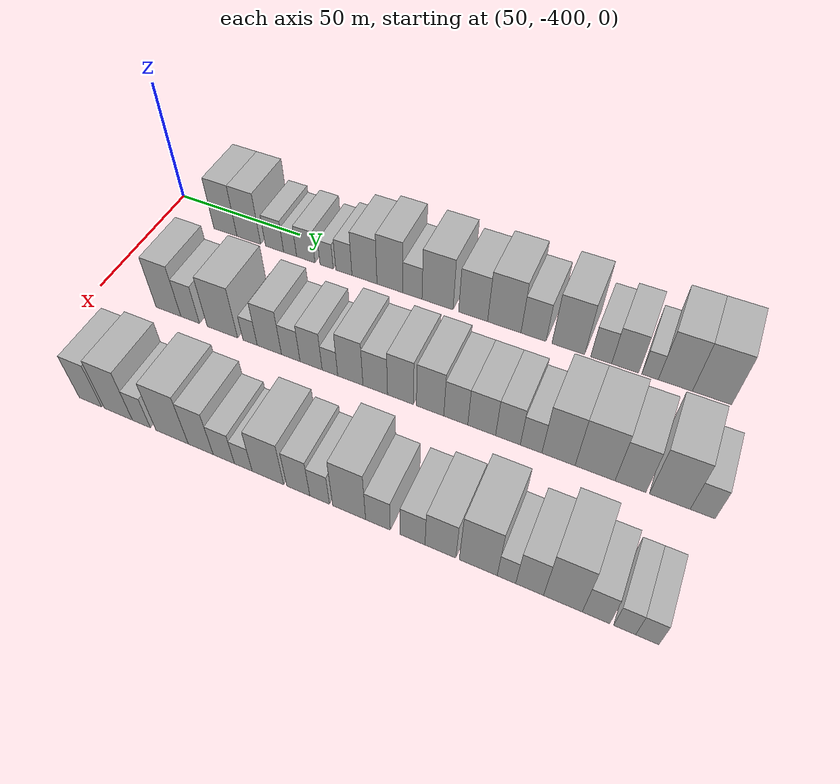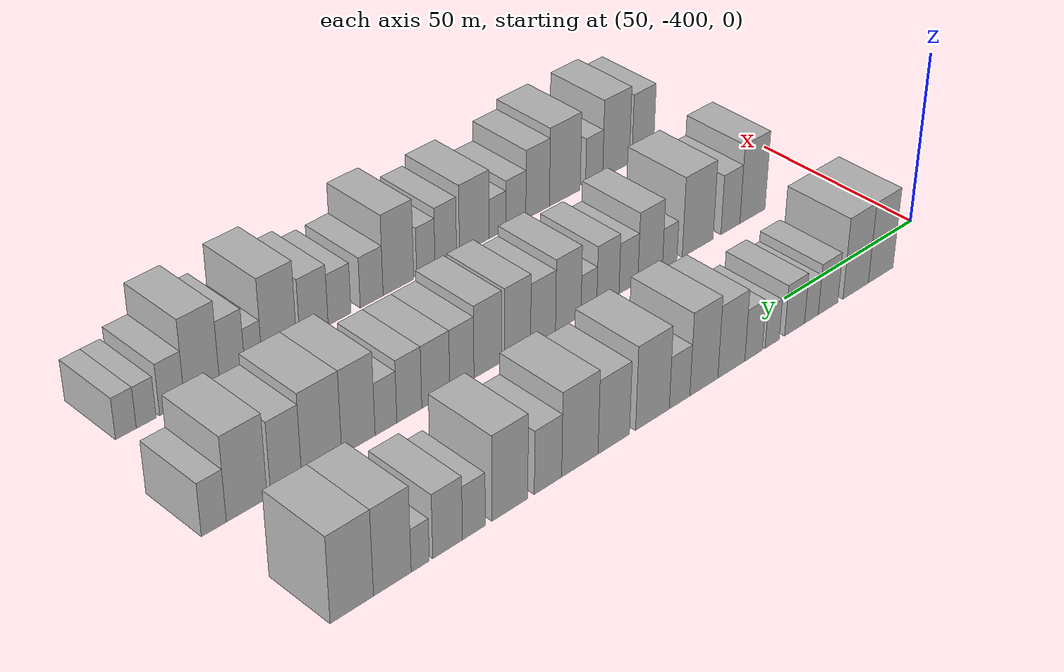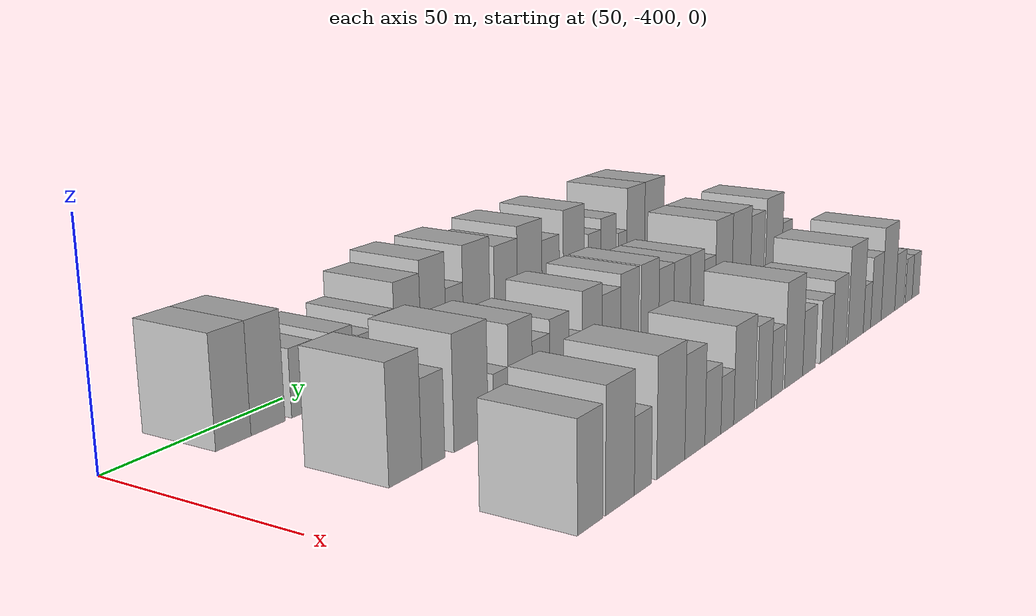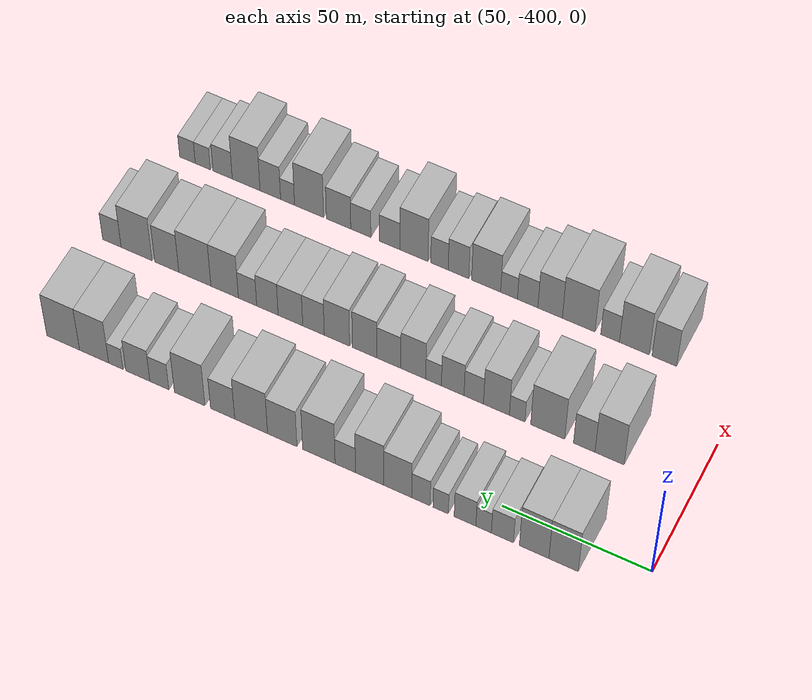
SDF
<sdf version="1.6">
 <world name="default">
  <model name="building_1">
   <static>1</static>
   <pose>50.0000 -375.1057 0 0.000000 0.000000 0.000000</pose>
   <link name="link">
    <pose>0 0 12.00 0 0 0</pose>
    <collision name="collision"><geometry><box><size>20.0000 9.7886 24.0000</size></box></geometry></collision>
    <visual name="visual">
     <cast_shadows>0</cast_shadows>
     <geometry><box><size>20.0000 9.7886 24.0000</size></box></geometry>
     <material>
      <script>
       <uri>model://HANNAS_wall/materials/scripts</uri>
       <uri>model://HANNAS_wall/materials/textures</uri>
       <name>vrc/HANNAS_wall</name>
      </script>
     </material>
    </visual>
   </link>
  </model>
  <model name="building_2">
   <static>1</static>
   <pose>50.0000 -365.2573 0 0.000000 0.000000 0.000000</pose>
   <link name="link">
    <pose>0 0 12.00 0 0 0</pose>
    <collision name="collision"><geometry><box><size>20.0000 9.9081 24.0000</size></box></geometry></collision>
    <visual name="visual">
     <cast_shadows>0</cast_shadows>
     <geometry><box><size>20.0000 9.9081 24.0000</size></box></geometry>
     <material>
      <script>
       <uri>model://HANNAS_wall/materials/scripts</uri>
       <uri>model://HANNAS_wall/materials/textures</uri>
       <name>vrc/HANNAS_wall</name>
      </script>
     </material>
    </visual>
   </link>
  </model>
  <model name="building_3">
   <static>1</static>
   <pose>50.0000 -354.5814 0 0.000000 0.000000 0.000000</pose>
   <link name="link">
    <pose>0 0 7.50 0 0 0</pose>
    <collision name="collision"><geometry><box><size>20.0000 7.4438 15.0000</size></box></geometry></collision>
    <visual name="visual">
     <cast_shadows>0</cast_shadows>
     <geometry><box><size>20.0000 7.4438 15.0000</size></box></geometry>
     <material>
      <script>
       <uri>model://HANNAS_wall/materials/scripts</uri>
       <uri>model://HANNAS_wall/materials/textures</uri>
       <name>vrc/HANNAS_wall</name>
      </script>
     </material>
    </visual>
   </link>
  </model>
  <model name="building_4">
   <static>1</static>
   <pose>50.0000 -348.2421 0 0.000000 0.000000 0.000000</pose>
   <link name="link">
    <pose>0 0 6.00 0 0 0</pose>
    <collision name="collision"><geometry><box><size>20.0000 5.2347 12.0000</size></box></geometry></collision>
    <visual name="visual">
     <cast_shadows>0</cast_shadows>
     <geometry><box><size>20.0000 5.2347 12.0000</size></box></geometry>
     <material>
      <script>
       <uri>model://HANNAS_wall/materials/scripts</uri>
       <uri>model://HANNAS_wall/materials/textures</uri>
       <name>vrc/HANNAS_wall</name>
      </script>
     </material>
    </visual>
   </link>
  </model>
  <model name="building_5">
   <static>1</static>
   <pose>50.0000 -341.9322 0 0.000000 0.000000 0.000000</pose>
   <link name="link">
    <pose>0 0 7.50 0 0 0</pose>
    <collision name="collision"><geometry><box><size>20.0000 7.3851 15.0000</size></box></geometry></collision>
    <visual name="visual">
     <cast_shadows>0</cast_shadows>
     <geometry><box><size>20.0000 7.3851 15.0000</size></box></geometry>
     <material>
      <script>
       <uri>model://HANNAS_wall/materials/scripts</uri>
       <uri>model://HANNAS_wall/materials/textures</uri>
       <name>vrc/HANNAS_wall</name>
      </script>
     </material>
    </visual>
   </link>
  </model>
  <model name="building_6">
   <static>1</static>
   <pose>50.0000 -333.6332 0 0.000000 0.000000 0.000000</pose>
   <link name="link">
    <pose>0 0 6.00 0 0 0</pose>
    <collision name="collision"><geometry><box><size>20.0000 5.2130 12.0000</size></box></geometry></collision>
    <visual name="visual">
     <cast_shadows>0</cast_shadows>
     <geometry><box><size>20.0000 5.2130 12.0000</size></box></geometry>
     <material>
      <script>
       <uri>model://HANNAS_wall/materials/scripts</uri>
       <uri>model://HANNAS_wall/materials/textures</uri>
       <name>vrc/HANNAS_wall</name>
      </script>
     </material>
    </visual>
   </link>
  </model>
  <model name="building_7">
   <static>1</static>
   <pose>50.0000 -326.8736 0 0.000000 0.000000 0.000000</pose>
   <link name="link">
    <pose>0 0 7.50 0 0 0</pose>
    <collision name="collision"><geometry><box><size>20.0000 6.3061 15.0000</size></box></geometry></collision>
    <visual name="visual">
     <cast_shadows>0</cast_shadows>
     <geometry><box><size>20.0000 6.3061 15.0000</size></box></geometry>
     <material>
      <script>
       <uri>model://HANNAS_wall/materials/scripts</uri>
       <uri>model://HANNAS_wall/materials/textures</uri>
       <name>vrc/HANNAS_wall</name>
      </script>
     </material>
    </visual>
   </link>
  </model>
  <model name="building_8">
   <static>1</static>
   <pose>50.0000 -318.9188 0 0.000000 0.000000 0.000000</pose>
   <link name="link">
    <pose>0 0 10.50 0 0 0</pose>
    <collision name="collision"><geometry><box><size>20.0000 9.6036 21.0000</size></box></geometry></collision>
    <visual name="visual">
     <cast_shadows>0</cast_shadows>
     <geometry><box><size>20.0000 9.6036 21.0000</size></box></geometry>
     <material>
      <script>
       <uri>model://HANNAS_wall/materials/scripts</uri>
       <uri>model://HANNAS_wall/materials/textures</uri>
       <name>vrc/HANNAS_wall</name>
      </script>
     </material>
    </visual>
   </link>
  </model>
  <model name="building_9">
   <static>1</static>
   <pose>50.0000 -309.2327 0 0.000000 0.000000 0.000000</pose>
   <link name="link">
    <pose>0 0 12.00 0 0 0</pose>
    <collision name="collision"><geometry><box><size>20.0000 9.7687 24.0000</size></box></geometry></collision>
    <visual name="visual">
     <cast_shadows>0</cast_shadows>
     <geometry><box><size>20.0000 9.7687 24.0000</size></box></geometry>
     <material>
      <script>
       <uri>model://HANNAS_wall/materials/scripts</uri>
       <uri>model://HANNAS_wall/materials/textures</uri>
       <name>vrc/HANNAS_wall</name>
      </script>
     </material>
    </visual>
   </link>
  </model>
  <model name="building_10">
   <static>1</static>
   <pose>50.0000 -300.8077 0 0.000000 0.000000 0.000000</pose>
   <link name="link">
    <pose>0 0 7.50 0 0 0</pose>
    <collision name="collision"><geometry><box><size>20.0000 7.0812 15.0000</size></box></geometry></collision>
    <visual name="visual">
     <cast_shadows>0</cast_shadows>
     <geometry><box><size>20.0000 7.0812 15.0000</size></box></geometry>
     <material>
      <script>
       <uri>model://HANNAS_wall/materials/scripts</uri>
       <uri>model://HANNAS_wall/materials/textures</uri>
       <name>vrc/HANNAS_wall</name>
      </script>
     </material>
    </visual>
   </link>
  </model>
  <model name="building_11">
   <static>1</static>
   <pose>50.0000 -291.6061 0 0.000000 0.000000 0.000000</pose>
   <link name="link">
    <pose>0 0 12.00 0 0 0</pose>
    <collision name="collision"><geometry><box><size>20.0000 11.3220 24.0000</size></box></geometry></collision>
    <visual name="visual">
     <cast_shadows>0</cast_shadows>
     <geometry><box><size>20.0000 11.3220 24.0000</size></box></geometry>
     <material>
      <script>
       <uri>model://HANNAS_wall/materials/scripts</uri>
       <uri>model://HANNAS_wall/materials/textures</uri>
       <name>vrc/HANNAS_wall</name>
      </script>
     </material>
    </visual>
   </link>
  </model>
  <model name="building_12">
   <static>1</static>
   <pose>50.0000 -278.7945 0 0.000000 0.000000 0.000000</pose>
   <link name="link">
    <pose>0 0 10.50 0 0 0</pose>
    <collision name="collision"><geometry><box><size>20.0000 10.3011 21.0000</size></box></geometry></collision>
    <visual name="visual">
     <cast_shadows>0</cast_shadows>
     <geometry><box><size>20.0000 10.3011 21.0000</size></box></geometry>
     <material>
      <script>
       <uri>model://HANNAS_wall/materials/scripts</uri>
       <uri>model://HANNAS_wall/materials/textures</uri>
       <name>vrc/HANNAS_wall</name>
      </script>
     </material>
    </visual>
   </link>
  </model>
  <model name="building_13">
   <static>1</static>
   <pose>50.0000 -267.8266 0 0.000000 0.000000 0.000000</pose>
   <link name="link">
    <pose>0 0 12.00 0 0 0</pose>
    <collision name="collision"><geometry><box><size>20.0000 11.6347 24.0000</size></box></geometry></collision>
    <visual name="visual">
     <cast_shadows>0</cast_shadows>
     <geometry><box><size>20.0000 11.6347 24.0000</size></box></geometry>
     <material>
      <script>
       <uri>model://HANNAS_wall/materials/scripts</uri>
       <uri>model://HANNAS_wall/materials/textures</uri>
       <name>vrc/HANNAS_wall</name>
      </script>
     </material>
    </visual>
   </link>
  </model>
  <model name="building_14">
   <static>1</static>
   <pose>50.0000 -257.7318 0 0.000000 0.000000 0.000000</pose>
   <link name="link">
    <pose>0 0 9.00 0 0 0</pose>
    <collision name="collision"><geometry><box><size>20.0000 8.5549 18.0000</size></box></geometry></collision>
    <visual name="visual">
     <cast_shadows>0</cast_shadows>
     <geometry><box><size>20.0000 8.5549 18.0000</size></box></geometry>
     <material>
      <script>
       <uri>model://HANNAS_wall/materials/scripts</uri>
       <uri>model://HANNAS_wall/materials/textures</uri>
       <name>vrc/HANNAS_wall</name>
      </script>
     </material>
    </visual>
   </link>
  </model>
  <model name="building_15">
   <static>1</static>
   <pose>50.0000 -245.9967 0 0.000000 0.000000 0.000000</pose>
   <link name="link">
    <pose>0 0 12.00 0 0 0</pose>
    <collision name="collision"><geometry><box><size>20.0000 10.9153 24.0000</size></box></geometry></collision>
    <visual name="visual">
     <cast_shadows>0</cast_shadows>
     <geometry><box><size>20.0000 10.9153 24.0000</size></box></geometry>
     <material>
      <script>
       <uri>model://HANNAS_wall/materials/scripts</uri>
       <uri>model://HANNAS_wall/materials/textures</uri>
       <name>vrc/HANNAS_wall</name>
      </script>
     </material>
    </visual>
   </link>
  </model>
  <model name="building_16">
   <static>1</static>
   <pose>50.0000 -235.1256 0 0.000000 0.000000 0.000000</pose>
   <link name="link">
    <pose>0 0 7.50 0 0 0</pose>
    <collision name="collision"><geometry><box><size>20.0000 6.8268 15.0000</size></box></geometry></collision>
    <visual name="visual">
     <cast_shadows>0</cast_shadows>
     <geometry><box><size>20.0000 6.8268 15.0000</size></box></geometry>
     <material>
      <script>
       <uri>model://HANNAS_wall/materials/scripts</uri>
       <uri>model://HANNAS_wall/materials/textures</uri>
       <name>vrc/HANNAS_wall</name>
      </script>
     </material>
    </visual>
   </link>
  </model>
  <model name="building_17">
   <static>1</static>
   <pose>50.0000 -227.3693 0 0.000000 0.000000 0.000000</pose>
   <link name="link">
    <pose>0 0 9.00 0 0 0</pose>
    <collision name="collision"><geometry><box><size>20.0000 8.6857 18.0000</size></box></geometry></collision>
    <visual name="visual">
     <cast_shadows>0</cast_shadows>
     <geometry><box><size>20.0000 8.6857 18.0000</size></box></geometry>
     <material>
      <script>
       <uri>model://HANNAS_wall/materials/scripts</uri>
       <uri>model://HANNAS_wall/materials/textures</uri>
       <name>vrc/HANNAS_wall</name>
      </script>
     </material>
    </visual>
   </link>
  </model>
  <model name="building_18">
   <static>1</static>
   <pose>50.0000 -219.4277 0 0.000000 0.000000 0.000000</pose>
   <link name="link">
    <pose>0 0 6.00 0 0 0</pose>
    <collision name="collision"><geometry><box><size>20.0000 5.1975 12.0000</size></box></geometry></collision>
    <visual name="visual">
     <cast_shadows>0</cast_shadows>
     <geometry><box><size>20.0000 5.1975 12.0000</size></box></geometry>
     <material>
      <script>
       <uri>model://HANNAS_wall/materials/scripts</uri>
       <uri>model://HANNAS_wall/materials/textures</uri>
       <name>vrc/HANNAS_wall</name>
      </script>
     </material>
    </visual>
   </link>
  </model>
  <model name="building_19">
   <static>1</static>
   <pose>50.0000 -211.5159 0 0.000000 0.000000 0.000000</pose>
   <link name="link">
    <pose>0 0 12.00 0 0 0</pose>
    <collision name="collision"><geometry><box><size>20.0000 10.6261 24.0000</size></box></geometry></collision>
    <visual name="visual">
     <cast_shadows>0</cast_shadows>
     <geometry><box><size>20.0000 10.6261 24.0000</size></box></geometry>
     <material>
      <script>
       <uri>model://HANNAS_wall/materials/scripts</uri>
       <uri>model://HANNAS_wall/materials/textures</uri>
       <name>vrc/HANNAS_wall</name>
      </script>
     </material>
    </visual>
   </link>
  </model>
  <model name="building_20">
   <static>1</static>
   <pose>50.0000 -200.2284 0 0.000000 0.000000 0.000000</pose>
   <link name="link">
    <pose>0 0 12.00 0 0 0</pose>
    <collision name="collision"><geometry><box><size>20.0000 11.9489 24.0000</size></box></geometry></collision>
    <visual name="visual">
     <cast_shadows>0</cast_shadows>
     <geometry><box><size>20.0000 11.9489 24.0000</size></box></geometry>
     <material>
      <script>
       <uri>model://HANNAS_wall/materials/scripts</uri>
       <uri>model://HANNAS_wall/materials/textures</uri>
       <name>vrc/HANNAS_wall</name>
      </script>
     </material>
    </visual>
   </link>
  </model>
  <model name="building_81">
   <static>1</static>
   <pose>90.0000 -372.0526 0 0.000000 0.000000 0.000000</pose>
   <link name="link">
    <pose>0 0 12.00 0 0 0</pose>
    <collision name="collision"><geometry><box><size>20.0000 9.8948 24.0000</size></box></geometry></collision>
    <visual name="visual">
     <cast_shadows>0</cast_shadows>
     <geometry><box><size>20.0000 9.8948 24.0000</size></box></geometry>
     <material>
      <script>
       <uri>model://HANNAS_wall/materials/scripts</uri>
       <uri>model://HANNAS_wall/materials/textures</uri>
       <name>vrc/HANNAS_wall</name>
      </script>
     </material>
    </visual>
   </link>
  </model>
  <model name="building_82">
   <static>1</static>
   <pose>90.0000 -363.4476 0 0.000000 0.000000 0.000000</pose>
   <link name="link">
    <pose>0 0 9.00 0 0 0</pose>
    <collision name="collision"><geometry><box><size>20.0000 7.3152 18.0000</size></box></geometry></collision>
    <visual name="visual">
     <cast_shadows>0</cast_shadows>
     <geometry><box><size>20.0000 7.3152 18.0000</size></box></geometry>
     <material>
      <script>
       <uri>model://HANNAS_wall/materials/scripts</uri>
       <uri>model://HANNAS_wall/materials/textures</uri>
       <name>vrc/HANNAS_wall</name>
      </script>
     </material>
    </visual>
   </link>
  </model>
  <model name="building_83">
   <static>1</static>
   <pose>90.0000 -350.9479 0 0.000000 0.000000 0.000000</pose>
   <link name="link">
    <pose>0 0 12.00 0 0 0</pose>
    <collision name="collision"><geometry><box><size>20.0000 11.6841 24.0000</size></box></geometry></collision>
    <visual name="visual">
     <cast_shadows>0</cast_shadows>
     <geometry><box><size>20.0000 11.6841 24.0000</size></box></geometry>
     <material>
      <script>
       <uri>model://HANNAS_wall/materials/scripts</uri>
       <uri>model://HANNAS_wall/materials/textures</uri>
       <name>vrc/HANNAS_wall</name>
      </script>
     </material>
    </visual>
   </link>
  </model>
  <model name="building_84">
   <static>1</static>
   <pose>90.0000 -340.4274 0 0.000000 0.000000 0.000000</pose>
   <link name="link">
    <pose>0 0 6.00 0 0 0</pose>
    <collision name="collision"><geometry><box><size>20.0000 5.3569 12.0000</size></box></geometry></collision>
    <visual name="visual">
     <cast_shadows>0</cast_shadows>
     <geometry><box><size>20.0000 5.3569 12.0000</size></box></geometry>
     <material>
      <script>
       <uri>model://HANNAS_wall/materials/scripts</uri>
       <uri>model://HANNAS_wall/materials/textures</uri>
       <name>vrc/HANNAS_wall</name>
      </script>
     </material>
    </visual>
   </link>
  </model>
  <model name="building_85">
   <static>1</static>
   <pose>90.0000 -333.2567 0 0.000000 0.000000 0.000000</pose>
   <link name="link">
    <pose>0 0 10.50 0 0 0</pose>
    <collision name="collision"><geometry><box><size>20.0000 8.9844 21.0000</size></box></geometry></collision>
    <visual name="visual">
     <cast_shadows>0</cast_shadows>
     <geometry><box><size>20.0000 8.9844 21.0000</size></box></geometry>
     <material>
      <script>
       <uri>model://HANNAS_wall/materials/scripts</uri>
       <uri>model://HANNAS_wall/materials/textures</uri>
       <name>vrc/HANNAS_wall</name>
      </script>
     </material>
    </visual>
   </link>
  </model>
  <model name="building_86">
   <static>1</static>
   <pose>90.0000 -325.3793 0 0.000000 0.000000 0.000000</pose>
   <link name="link">
    <pose>0 0 7.50 0 0 0</pose>
    <collision name="collision"><geometry><box><size>20.0000 6.7705 15.0000</size></box></geometry></collision>
    <visual name="visual">
     <cast_shadows>0</cast_shadows>
     <geometry><box><size>20.0000 6.7705 15.0000</size></box></geometry>
     <material>
      <script>
       <uri>model://HANNAS_wall/materials/scripts</uri>
       <uri>model://HANNAS_wall/materials/textures</uri>
       <name>vrc/HANNAS_wall</name>
      </script>
     </material>
    </visual>
   </link>
  </model>
  <model name="building_87">
   <static>1</static>
   <pose>90.0000 -318.0382 0 0.000000 0.000000 0.000000</pose>
   <link name="link">
    <pose>0 0 9.00 0 0 0</pose>
    <collision name="collision"><geometry><box><size>20.0000 7.9116 18.0000</size></box></geometry></collision>
    <visual name="visual">
     <cast_shadows>0</cast_shadows>
     <geometry><box><size>20.0000 7.9116 18.0000</size></box></geometry>
     <material>
      <script>
       <uri>model://HANNAS_wall/materials/scripts</uri>
       <uri>model://HANNAS_wall/materials/textures</uri>
       <name>vrc/HANNAS_wall</name>
      </script>
     </material>
    </visual>
   </link>
  </model>
  <model name="building_88">
   <static>1</static>
   <pose>90.0000 -311.3241 0 0.000000 0.000000 0.000000</pose>
   <link name="link">
    <pose>0 0 6.00 0 0 0</pose>
    <collision name="collision"><geometry><box><size>20.0000 5.5167 12.0000</size></box></geometry></collision>
    <visual name="visual">
     <cast_shadows>0</cast_shadows>
     <geometry><box><size>20.0000 5.5167 12.0000</size></box></geometry>
     <material>
      <script>
       <uri>model://HANNAS_wall/materials/scripts</uri>
       <uri>model://HANNAS_wall/materials/textures</uri>
       <name>vrc/HANNAS_wall</name>
      </script>
     </material>
    </visual>
   </link>
  </model>
  <model name="building_89">
   <static>1</static>
   <pose>90.0000 -304.1664 0 0.000000 0.000000 0.000000</pose>
   <link name="link">
    <pose>0 0 10.50 0 0 0</pose>
    <collision name="collision"><geometry><box><size>20.0000 8.7987 21.0000</size></box></geometry></collision>
    <visual name="visual">
     <cast_shadows>0</cast_shadows>
     <geometry><box><size>20.0000 8.7987 21.0000</size></box></geometry>
     <material>
      <script>
       <uri>model://HANNAS_wall/materials/scripts</uri>
       <uri>model://HANNAS_wall/materials/textures</uri>
       <name>vrc/HANNAS_wall</name>
      </script>
     </material>
    </visual>
   </link>
  </model>
  <model name="building_90">
   <static>1</static>
   <pose>90.0000 -295.5574 0 0.000000 0.000000 0.000000</pose>
   <link name="link">
    <pose>0 0 9.00 0 0 0</pose>
    <collision name="collision"><geometry><box><size>20.0000 8.4194 18.0000</size></box></geometry></collision>
    <visual name="visual">
     <cast_shadows>0</cast_shadows>
     <geometry><box><size>20.0000 8.4194 18.0000</size></box></geometry>
     <material>
      <script>
       <uri>model://HANNAS_wall/materials/scripts</uri>
       <uri>model://HANNAS_wall/materials/textures</uri>
       <name>vrc/HANNAS_wall</name>
      </script>
     </material>
    </visual>
   </link>
  </model>
  <model name="building_91">
   <static>1</static>
   <pose>90.0000 -287.0091 0 0.000000 0.000000 0.000000</pose>
   <link name="link">
    <pose>0 0 10.50 0 0 0</pose>
    <collision name="collision"><geometry><box><size>20.0000 8.6771 21.0000</size></box></geometry></collision>
    <visual name="visual">
     <cast_shadows>0</cast_shadows>
     <geometry><box><size>20.0000 8.6771 21.0000</size></box></geometry>
     <material>
      <script>
       <uri>model://HANNAS_wall/materials/scripts</uri>
       <uri>model://HANNAS_wall/materials/textures</uri>
       <name>vrc/HANNAS_wall</name>
      </script>
     </material>
    </visual>
   </link>
  </model>
  <model name="building_92">
   <static>1</static>
   <pose>90.0000 -277.1499 0 0.000000 0.000000 0.000000</pose>
   <link name="link">
    <pose>0 0 10.50 0 0 0</pose>
    <collision name="collision"><geometry><box><size>20.0000 9.0413 21.0000</size></box></geometry></collision>
    <visual name="visual">
     <cast_shadows>0</cast_shadows>
     <geometry><box><size>20.0000 9.0413 21.0000</size></box></geometry>
     <material>
      <script>
       <uri>model://HANNAS_wall/materials/scripts</uri>
       <uri>model://HANNAS_wall/materials/textures</uri>
       <name>vrc/HANNAS_wall</name>
      </script>
     </material>
    </visual>
   </link>
  </model>
  <model name="building_93">
   <static>1</static>
   <pose>90.0000 -268.7550 0 0.000000 0.000000 0.000000</pose>
   <link name="link">
    <pose>0 0 9.00 0 0 0</pose>
    <collision name="collision"><geometry><box><size>20.0000 7.7486 18.0000</size></box></geometry></collision>
    <visual name="visual">
     <cast_shadows>0</cast_shadows>
     <geometry><box><size>20.0000 7.7486 18.0000</size></box></geometry>
     <material>
      <script>
       <uri>model://HANNAS_wall/materials/scripts</uri>
       <uri>model://HANNAS_wall/materials/textures</uri>
       <name>vrc/HANNAS_wall</name>
      </script>
     </material>
    </visual>
   </link>
  </model>
  <model name="building_94">
   <static>1</static>
   <pose>90.0000 -260.4542 0 0.000000 0.000000 0.000000</pose>
   <link name="link">
    <pose>0 0 9.00 0 0 0</pose>
    <collision name="collision"><geometry><box><size>20.0000 8.8531 18.0000</size></box></geometry></collision>
    <visual name="visual">
     <cast_shadows>0</cast_shadows>
     <geometry><box><size>20.0000 8.8531 18.0000</size></box></geometry>
     <material>
      <script>
       <uri>model://HANNAS_wall/materials/scripts</uri>
       <uri>model://HANNAS_wall/materials/textures</uri>
       <name>vrc/HANNAS_wall</name>
      </script>
     </material>
    </visual>
   </link>
  </model>
  <model name="building_95">
   <static>1</static>
   <pose>90.0000 -252.1604 0 0.000000 0.000000 0.000000</pose>
   <link name="link">
    <pose>0 0 9.00 0 0 0</pose>
    <collision name="collision"><geometry><box><size>20.0000 7.7344 18.0000</size></box></geometry></collision>
    <visual name="visual">
     <cast_shadows>0</cast_shadows>
     <geometry><box><size>20.0000 7.7344 18.0000</size></box></geometry>
     <material>
      <script>
       <uri>model://HANNAS_wall/materials/scripts</uri>
       <uri>model://HANNAS_wall/materials/textures</uri>
       <name>vrc/HANNAS_wall</name>
      </script>
     </material>
    </visual>
   </link>
  </model>
  <model name="building_96">
   <static>1</static>
   <pose>90.0000 -244.9713 0 0.000000 0.000000 0.000000</pose>
   <link name="link">
    <pose>0 0 7.50 0 0 0</pose>
    <collision name="collision"><geometry><box><size>20.0000 6.6440 15.0000</size></box></geometry></collision>
    <visual name="visual">
     <cast_shadows>0</cast_shadows>
     <geometry><box><size>20.0000 6.6440 15.0000</size></box></geometry>
     <material>
      <script>
       <uri>model://HANNAS_wall/materials/scripts</uri>
       <uri>model://HANNAS_wall/materials/textures</uri>
       <name>vrc/HANNAS_wall</name>
      </script>
     </material>
    </visual>
   </link>
  </model>
  <model name="building_97">
   <static>1</static>
   <pose>90.0000 -236.6431 0 0.000000 0.000000 0.000000</pose>
   <link name="link">
    <pose>0 0 12.00 0 0 0</pose>
    <collision name="collision"><geometry><box><size>20.0000 10.0123 24.0000</size></box></geometry></collision>
    <visual name="visual">
     <cast_shadows>0</cast_shadows>
     <geometry><box><size>20.0000 10.0123 24.0000</size></box></geometry>
     <material>
      <script>
       <uri>model://HANNAS_wall/materials/scripts</uri>
       <uri>model://HANNAS_wall/materials/textures</uri>
       <name>vrc/HANNAS_wall</name>
      </script>
     </material>
    </visual>
   </link>
  </model>
  <model name="building_98">
   <static>1</static>
   <pose>90.0000 -225.7573 0 0.000000 0.000000 0.000000</pose>
   <link name="link">
    <pose>0 0 12.00 0 0 0</pose>
    <collision name="collision"><geometry><box><size>20.0000 11.7594 24.0000</size></box></geometry></collision>
    <visual name="visual">
     <cast_shadows>0</cast_shadows>
     <geometry><box><size>20.0000 11.7594 24.0000</size></box></geometry>
     <material>
      <script>
       <uri>model://HANNAS_wall/materials/scripts</uri>
       <uri>model://HANNAS_wall/materials/textures</uri>
       <name>vrc/HANNAS_wall</name>
      </script>
     </material>
    </visual>
   </link>
  </model>
  <model name="building_99">
   <static>1</static>
   <pose>90.0000 -215.4258 0 0.000000 0.000000 0.000000</pose>
   <link name="link">
    <pose>0 0 10.50 0 0 0</pose>
    <collision name="collision"><geometry><box><size>20.0000 8.9036 21.0000</size></box></geometry></collision>
    <visual name="visual">
     <cast_shadows>0</cast_shadows>
     <geometry><box><size>20.0000 8.9036 21.0000</size></box></geometry>
     <material>
      <script>
       <uri>model://HANNAS_wall/materials/scripts</uri>
       <uri>model://HANNAS_wall/materials/textures</uri>
       <name>vrc/HANNAS_wall</name>
      </script>
     </material>
    </visual>
   </link>
  </model>
  <model name="building_100">
   <static>1</static>
   <pose>90.0000 -204.2478 0 0.000000 0.000000 0.000000</pose>
   <link name="link">
    <pose>0 0 12.00 0 0 0</pose>
    <collision name="collision"><geometry><box><size>20.0000 11.4525 24.0000</size></box></geometry></collision>
    <visual name="visual">
     <cast_shadows>0</cast_shadows>
     <geometry><box><size>20.0000 11.4525 24.0000</size></box></geometry>
     <material>
      <script>
       <uri>model://HANNAS_wall/materials/scripts</uri>
       <uri>model://HANNAS_wall/materials/textures</uri>
       <name>vrc/HANNAS_wall</name>
      </script>
     </material>
    </visual>
   </link>
  </model>
  <model name="building_101">
   <static>1</static>
   <pose>90.0000 -195.0919 0 0.000000 0.000000 0.000000</pose>
   <link name="link">
    <pose>0 0 7.50 0 0 0</pose>
    <collision name="collision"><geometry><box><size>20.0000 6.8593 15.0000</size></box></geometry></collision>
    <visual name="visual">
     <cast_shadows>0</cast_shadows>
     <geometry><box><size>20.0000 6.8593 15.0000</size></box></geometry>
     <material>
      <script>
       <uri>model://HANNAS_wall/materials/scripts</uri>
       <uri>model://HANNAS_wall/materials/textures</uri>
       <name>vrc/HANNAS_wall</name>
      </script>
     </material>
    </visual>
   </link>
  </model>
  <model name="building_167">
   <static>1</static>
   <pose>130.0000 -372.7508 0 0.000000 0.000000 0.000000</pose>
   <link name="link">
    <pose>0 0 10.50 0 0 0</pose>
    <collision name="collision"><geometry><box><size>20.0000 8.4984 21.0000</size></box></geometry></collision>
    <visual name="visual">
     <cast_shadows>0</cast_shadows>
     <geometry><box><size>20.0000 8.4984 21.0000</size></box></geometry>
     <material>
      <script>
       <uri>model://HANNAS_wall/materials/scripts</uri>
       <uri>model://HANNAS_wall/materials/textures</uri>
       <name>vrc/HANNAS_wall</name>
      </script>
     </material>
    </visual>
   </link>
  </model>
  <model name="building_168">
   <static>1</static>
   <pose>130.0000 -362.3441 0 0.000000 0.000000 0.000000</pose>
   <link name="link">
    <pose>0 0 12.00 0 0 0</pose>
    <collision name="collision"><geometry><box><size>20.0000 10.3149 24.0000</size></box></geometry></collision>
    <visual name="visual">
     <cast_shadows>0</cast_shadows>
     <geometry><box><size>20.0000 10.3149 24.0000</size></box></geometry>
     <material>
      <script>
       <uri>model://HANNAS_wall/materials/scripts</uri>
       <uri>model://HANNAS_wall/materials/textures</uri>
       <name>vrc/HANNAS_wall</name>
      </script>
     </material>
    </visual>
   </link>
  </model>
  <model name="building_169">
   <static>1</static>
   <pose>130.0000 -353.9396 0 0.000000 0.000000 0.000000</pose>
   <link name="link">
    <pose>0 0 7.50 0 0 0</pose>
    <collision name="collision"><geometry><box><size>20.0000 6.4941 15.0000</size></box></geometry></collision>
    <visual name="visual">
     <cast_shadows>0</cast_shadows>
     <geometry><box><size>20.0000 6.4941 15.0000</size></box></geometry>
     <material>
      <script>
       <uri>model://HANNAS_wall/materials/scripts</uri>
       <uri>model://HANNAS_wall/materials/textures</uri>
       <name>vrc/HANNAS_wall</name>
      </script>
     </material>
    </visual>
   </link>
  </model>
  <model name="building_170">
   <static>1</static>
   <pose>130.0000 -342.9791 0 0.000000 0.000000 0.000000</pose>
   <link name="link">
    <pose>0 0 12.00 0 0 0</pose>
    <collision name="collision"><geometry><box><size>20.0000 11.4270 24.0000</size></box></geometry></collision>
    <visual name="visual">
     <cast_shadows>0</cast_shadows>
     <geometry><box><size>20.0000 11.4270 24.0000</size></box></geometry>
     <material>
      <script>
       <uri>model://HANNAS_wall/materials/scripts</uri>
       <uri>model://HANNAS_wall/materials/textures</uri>
       <name>vrc/HANNAS_wall</name>
      </script>
     </material>
    </visual>
   </link>
  </model>
  <model name="building_171">
   <static>1</static>
   <pose>130.0000 -332.9454 0 0.000000 0.000000 0.000000</pose>
   <link name="link">
    <pose>0 0 10.50 0 0 0</pose>
    <collision name="collision"><geometry><box><size>20.0000 8.6403 21.0000</size></box></geometry></collision>
    <visual name="visual">
     <cast_shadows>0</cast_shadows>
     <geometry><box><size>20.0000 8.6403 21.0000</size></box></geometry>
     <material>
      <script>
       <uri>model://HANNAS_wall/materials/scripts</uri>
       <uri>model://HANNAS_wall/materials/textures</uri>
       <name>vrc/HANNAS_wall</name>
      </script>
     </material>
    </visual>
   </link>
  </model>
  <model name="building_172">
   <static>1</static>
   <pose>130.0000 -325.0160 0 0.000000 0.000000 0.000000</pose>
   <link name="link">
    <pose>0 0 7.50 0 0 0</pose>
    <collision name="collision"><geometry><box><size>20.0000 7.2184 15.0000</size></box></geometry></collision>
    <visual name="visual">
     <cast_shadows>0</cast_shadows>
     <geometry><box><size>20.0000 7.2184 15.0000</size></box></geometry>
     <material>
      <script>
       <uri>model://HANNAS_wall/materials/scripts</uri>
       <uri>model://HANNAS_wall/materials/textures</uri>
       <name>vrc/HANNAS_wall</name>
      </script>
     </material>
    </visual>
   </link>
  </model>
  <model name="building_173">
   <static>1</static>
   <pose>130.0000 -318.4193 0 0.000000 0.000000 0.000000</pose>
   <link name="link">
    <pose>0 0 6.00 0 0 0</pose>
    <collision name="collision"><geometry><box><size>20.0000 5.9750 12.0000</size></box></geometry></collision>
    <visual name="visual">
     <cast_shadows>0</cast_shadows>
     <geometry><box><size>20.0000 5.9750 12.0000</size></box></geometry>
     <material>
      <script>
       <uri>model://HANNAS_wall/materials/scripts</uri>
       <uri>model://HANNAS_wall/materials/textures</uri>
       <name>vrc/HANNAS_wall</name>
      </script>
     </material>
    </visual>
   </link>
  </model>
  <model name="building_174">
   <static>1</static>
   <pose>130.0000 -310.2522 0 0.000000 0.000000 0.000000</pose>
   <link name="link">
    <pose>0 0 10.50 0 0 0</pose>
    <collision name="collision"><geometry><box><size>20.0000 10.3592 21.0000</size></box></geometry></collision>
    <visual name="visual">
     <cast_shadows>0</cast_shadows>
     <geometry><box><size>20.0000 10.3592 21.0000</size></box></geometry>
     <material>
      <script>
       <uri>model://HANNAS_wall/materials/scripts</uri>
       <uri>model://HANNAS_wall/materials/textures</uri>
       <name>vrc/HANNAS_wall</name>
      </script>
     </material>
    </visual>
   </link>
  </model>
  <model name="building_175">
   <static>1</static>
   <pose>130.0000 -300.3736 0 0.000000 0.000000 0.000000</pose>
   <link name="link">
    <pose>0 0 9.00 0 0 0</pose>
    <collision name="collision"><geometry><box><size>20.0000 7.3980 18.0000</size></box></geometry></collision>
    <visual name="visual">
     <cast_shadows>0</cast_shadows>
     <geometry><box><size>20.0000 7.3980 18.0000</size></box></geometry>
     <material>
      <script>
       <uri>model://HANNAS_wall/materials/scripts</uri>
       <uri>model://HANNAS_wall/materials/textures</uri>
       <name>vrc/HANNAS_wall</name>
      </script>
     </material>
    </visual>
   </link>
  </model>
  <model name="building_176">
   <static>1</static>
   <pose>130.0000 -293.5562 0 0.000000 0.000000 0.000000</pose>
   <link name="link">
    <pose>0 0 7.50 0 0 0</pose>
    <collision name="collision"><geometry><box><size>20.0000 6.2367 15.0000</size></box></geometry></collision>
    <visual name="visual">
     <cast_shadows>0</cast_shadows>
     <geometry><box><size>20.0000 6.2367 15.0000</size></box></geometry>
     <material>
      <script>
       <uri>model://HANNAS_wall/materials/scripts</uri>
       <uri>model://HANNAS_wall/materials/textures</uri>
       <name>vrc/HANNAS_wall</name>
      </script>
     </material>
    </visual>
   </link>
  </model>
  <model name="building_177">
   <static>1</static>
   <pose>130.0000 -284.3450 0 0.000000 0.000000 0.000000</pose>
   <link name="link">
    <pose>0 0 12.00 0 0 0</pose>
    <collision name="collision"><geometry><box><size>20.0000 10.1857 24.0000</size></box></geometry></collision>
    <visual name="visual">
     <cast_shadows>0</cast_shadows>
     <geometry><box><size>20.0000 10.1857 24.0000</size></box></geometry>
     <material>
      <script>
       <uri>model://HANNAS_wall/materials/scripts</uri>
       <uri>model://HANNAS_wall/materials/textures</uri>
       <name>vrc/HANNAS_wall</name>
      </script>
     </material>
    </visual>
   </link>
  </model>
  <model name="building_178">
   <static>1</static>
   <pose>130.0000 -275.5042 0 0.000000 0.000000 0.000000</pose>
   <link name="link">
    <pose>0 0 7.50 0 0 0</pose>
    <collision name="collision"><geometry><box><size>20.0000 7.4959 15.0000</size></box></geometry></collision>
    <visual name="visual">
     <cast_shadows>0</cast_shadows>
     <geometry><box><size>20.0000 7.4959 15.0000</size></box></geometry>
     <material>
      <script>
       <uri>model://HANNAS_wall/materials/scripts</uri>
       <uri>model://HANNAS_wall/materials/textures</uri>
       <name>vrc/HANNAS_wall</name>
      </script>
     </material>
    </visual>
   </link>
  </model>
  <model name="building_179">
   <static>1</static>
   <pose>130.0000 -265.0937 0 0.000000 0.000000 0.000000</pose>
   <link name="link">
    <pose>0 0 7.50 0 0 0</pose>
    <collision name="collision"><geometry><box><size>20.0000 7.3251 15.0000</size></box></geometry></collision>
    <visual name="visual">
     <cast_shadows>0</cast_shadows>
     <geometry><box><size>20.0000 7.3251 15.0000</size></box></geometry>
     <material>
      <script>
       <uri>model://HANNAS_wall/materials/scripts</uri>
       <uri>model://HANNAS_wall/materials/textures</uri>
       <name>vrc/HANNAS_wall</name>
      </script>
     </material>
    </visual>
   </link>
  </model>
  <model name="building_180">
   <static>1</static>
   <pose>130.0000 -256.9616 0 0.000000 0.000000 0.000000</pose>
   <link name="link">
    <pose>0 0 9.00 0 0 0</pose>
    <collision name="collision"><geometry><box><size>20.0000 8.9392 18.0000</size></box></geometry></collision>
    <visual name="visual">
     <cast_shadows>0</cast_shadows>
     <geometry><box><size>20.0000 8.9392 18.0000</size></box></geometry>
     <material>
      <script>
       <uri>model://HANNAS_wall/materials/scripts</uri>
       <uri>model://HANNAS_wall/materials/textures</uri>
       <name>vrc/HANNAS_wall</name>
      </script>
     </material>
    </visual>
   </link>
  </model>
  <model name="building_181">
   <static>1</static>
   <pose>130.0000 -246.1346 0 0.000000 0.000000 0.000000</pose>
   <link name="link">
    <pose>0 0 12.00 0 0 0</pose>
    <collision name="collision"><geometry><box><size>20.0000 10.7149 24.0000</size></box></geometry></collision>
    <visual name="visual">
     <cast_shadows>0</cast_shadows>
     <geometry><box><size>20.0000 10.7149 24.0000</size></box></geometry>
     <material>
      <script>
       <uri>model://HANNAS_wall/materials/scripts</uri>
       <uri>model://HANNAS_wall/materials/textures</uri>
       <name>vrc/HANNAS_wall</name>
      </script>
     </material>
    </visual>
   </link>
  </model>
  <model name="building_182">
   <static>1</static>
   <pose>130.0000 -238.1975 0 0.000000 0.000000 0.000000</pose>
   <link name="link">
    <pose>0 0 6.00 0 0 0</pose>
    <collision name="collision"><geometry><box><size>20.0000 5.1592 12.0000</size></box></geometry></collision>
    <visual name="visual">
     <cast_shadows>0</cast_shadows>
     <geometry><box><size>20.0000 5.1592 12.0000</size></box></geometry>
     <material>
      <script>
       <uri>model://HANNAS_wall/materials/scripts</uri>
       <uri>model://HANNAS_wall/materials/textures</uri>
       <name>vrc/HANNAS_wall</name>
      </script>
     </material>
    </visual>
   </link>
  </model>
  <model name="building_183">
   <static>1</static>
   <pose>130.0000 -231.8173 0 0.000000 0.000000 0.000000</pose>
   <link name="link">
    <pose>0 0 9.00 0 0 0</pose>
    <collision name="collision"><geometry><box><size>20.0000 7.6013 18.0000</size></box></geometry></collision>
    <visual name="visual">
     <cast_shadows>0</cast_shadows>
     <geometry><box><size>20.0000 7.6013 18.0000</size></box></geometry>
     <material>
      <script>
       <uri>model://HANNAS_wall/materials/scripts</uri>
       <uri>model://HANNAS_wall/materials/textures</uri>
       <name>vrc/HANNAS_wall</name>
      </script>
     </material>
    </visual>
   </link>
  </model>
  <model name="building_184">
   <static>1</static>
   <pose>130.0000 -222.8439 0 0.000000 0.000000 0.000000</pose>
   <link name="link">
    <pose>0 0 12.00 0 0 0</pose>
    <collision name="collision"><geometry><box><size>20.0000 10.3456 24.0000</size></box></geometry></collision>
    <visual name="visual">
     <cast_shadows>0</cast_shadows>
     <geometry><box><size>20.0000 10.3456 24.0000</size></box></geometry>
     <material>
      <script>
       <uri>model://HANNAS_wall/materials/scripts</uri>
       <uri>model://HANNAS_wall/materials/textures</uri>
       <name>vrc/HANNAS_wall</name>
      </script>
     </material>
    </visual>
   </link>
  </model>
  <model name="building_185">
   <static>1</static>
   <pose>130.0000 -214.0610 0 0.000000 0.000000 0.000000</pose>
   <link name="link">
    <pose>0 0 7.50 0 0 0</pose>
    <collision name="collision"><geometry><box><size>20.0000 7.2201 15.0000</size></box></geometry></collision>
    <visual name="visual">
     <cast_shadows>0</cast_shadows>
     <geometry><box><size>20.0000 7.2201 15.0000</size></box></geometry>
     <material>
      <script>
       <uri>model://HANNAS_wall/materials/scripts</uri>
       <uri>model://HANNAS_wall/materials/textures</uri>
       <name>vrc/HANNAS_wall</name>
      </script>
     </material>
    </visual>
   </link>
  </model>
  <model name="building_186">
   <static>1</static>
   <pose>130.0000 -206.6276 0 0.000000 0.000000 0.000000</pose>
   <link name="link">
    <pose>0 0 6.00 0 0 0</pose>
    <collision name="collision"><geometry><box><size>20.0000 5.6467 12.0000</size></box></geometry></collision>
    <visual name="visual">
     <cast_shadows>0</cast_shadows>
     <geometry><box><size>20.0000 5.6467 12.0000</size></box></geometry>
     <material>
      <script>
       <uri>model://HANNAS_wall/materials/scripts</uri>
       <uri>model://HANNAS_wall/materials/textures</uri>
       <name>vrc/HANNAS_wall</name>
      </script>
     </material>
    </visual>
   </link>
  </model>
  <model name="building_187">
   <static>1</static>
   <pose>130.0000 -200.8729 0 0.000000 0.000000 0.000000</pose>
   <link name="link">
    <pose>0 0 6.00 0 0 0</pose>
    <collision name="collision"><geometry><box><size>20.0000 5.8627 12.0000</size></box></geometry></collision>
    <visual name="visual">
     <cast_shadows>0</cast_shadows>
     <geometry><box><size>20.0000 5.8627 12.0000</size></box></geometry>
     <material>
      <script>
       <uri>model://HANNAS_wall/materials/scripts</uri>
       <uri>model://HANNAS_wall/materials/textures</uri>
       <name>vrc/HANNAS_wall</name>
      </script>
     </material>
    </visual>
   </link>
  </model>
 </world>
</sdf>
